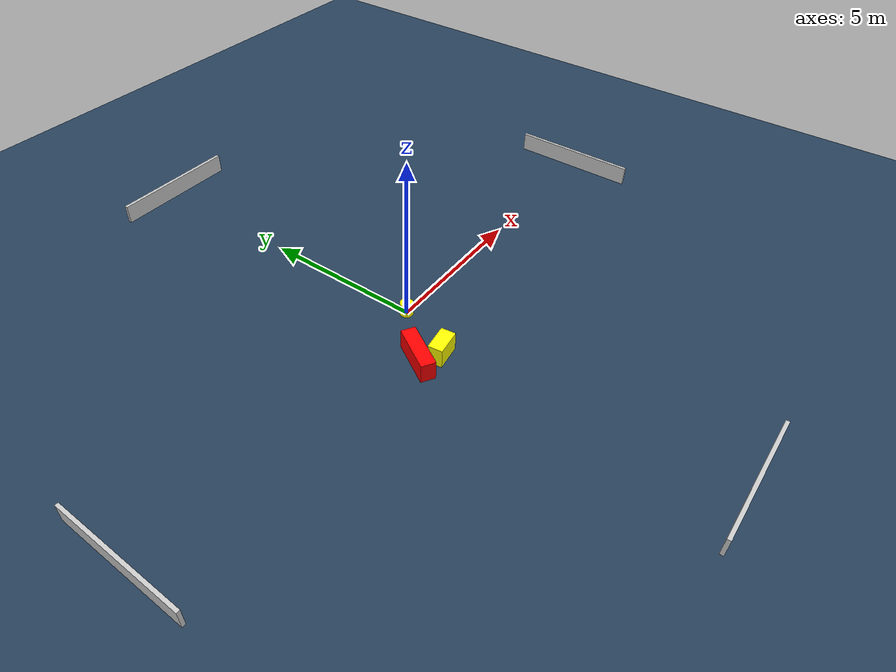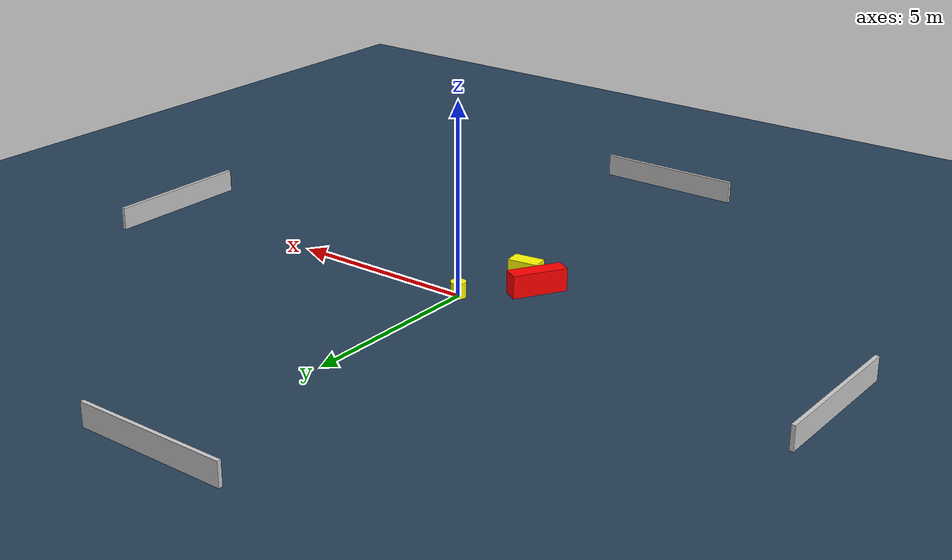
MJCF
<?xml version="1.0" ?>
<mujoco model="generated_environment">
  <option timestep="0.01" integrator="RK4" cone="elliptic"/>
  <default>
    <geom density="1"/>
  </default>
  <asset>
    <texture builtin="gradient" height="3072" name="skybox" rgb1="0.3 0.5 0.7" rgb2="0 0 0" type="skybox" width="512"/>
    <texture builtin="checker" height="300" name="groundplane" rgb1="0.2 0.3 0.4" rgb2="0.1 0.2 0.3" type="2d" width="300"/>
    <material name="groundplane" reflectance="0.2" texrepeat="5 5" texture="groundplane"/>
  </asset>
  <worldbody>
    <light dir="0 0 -1" directional="true" pos="0 0 1.5"/>
    <geom condim="3" friction="0.5 0.005 0.001" material="groundplane" name="floor" pos="0 0 0" size="0 0 0.05" type="plane"/>
    <body name="walls">
      <geom name="wall_1" condim="4" pos="-10.0 0.0 0.3" rgba="0.800000011920929 0.800000011920929 0.800000011920929 1.0" size="0.05 2.0 0.3" type="box"/>
      <geom name="wall_2" condim="4" pos="10.0 0.0 0.3" rgba="0.800000011920929 0.800000011920929 0.800000011920929 1.0" size="0.05 2.0 0.3" type="box"/>
      <geom name="wall_3" condim="4" pos="0.0 -10.0 0.3" rgba="0.800000011920929 0.800000011920929 0.800000011920929 1.0" size="2.0 0.05 0.3" type="box"/>
      <geom name="wall_4" condim="4" pos="0.0 10.0 0.3" rgba="0.800000011920929 0.800000011920929 0.800000011920929 1.0" size="2.0 0.05 0.3" type="box"/>
    </body>
    <body name="robot">
      <joint name="joint_x" type="slide" pos="0 0 0" axis="1 0 0"/>
      <joint name="joint_y" type="slide" pos="0 0 0" axis="0 1 0"/>
      <geom name="robot" type="cylinder" pos="0.0 0.0 0.2" size="0.2 0.2 0.0" mass="5.0" friction="1.0 0.005 0.0001" condim="4" rgba="1.0 1.0 0.0 1.0"/>
    </body>
    <body name="obstacle_1_movable">
      <geom name="obstacle_1_movable" condim="4" pos="-0.7768484378091968 -1.7707648976764723 0.3" euler="0 0 7.864378598842516" friction="0.0 0.005 0.001" rgba="1.0 1.0 0.0 1.0" size="0.4010577645968887 0.2183148243587397 0.3" type="box" mass="0.1"/>
      <joint type="free"/>
    </body>
    <body name="obstacle_2_static">
      <geom name="obstacle_2_static" condim="4" pos="-1.362097608617602 -1.4116028227191944 0.3" euler="0 0 58.90802642872064" friction="0.0 0.005 0.001" rgba="1.0 0.0 0.0 1.0" size="0.7204167158771422 0.2176995856585079 0.3" type="box"/>
    </body>
  </worldbody>
  <actuator>
    <motor name="actuator_x" joint="joint_x" gear="1" ctrlrange="-1 1"/>
    <motor name="actuator_y" joint="joint_y" gear="1" ctrlrange="-1 1"/>
  </actuator>
</mujoco>
